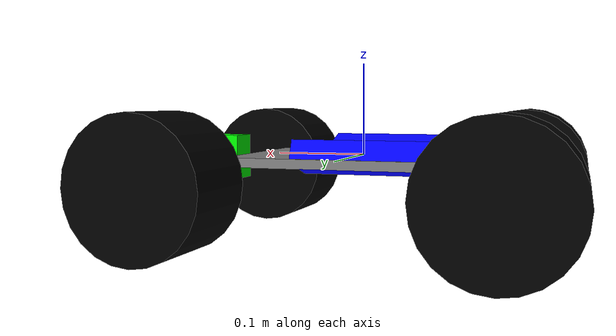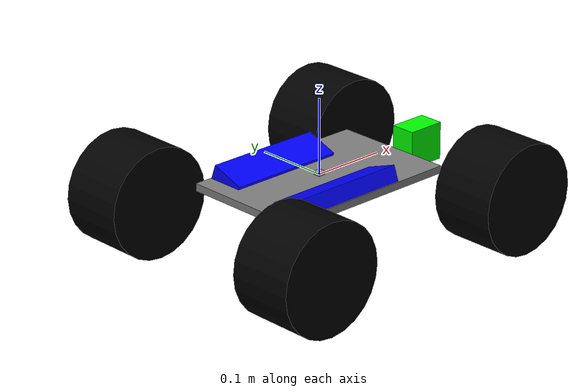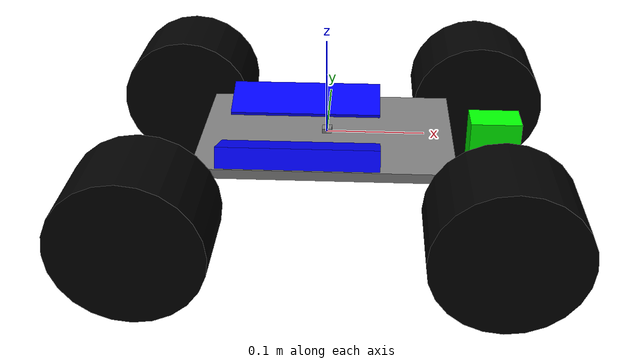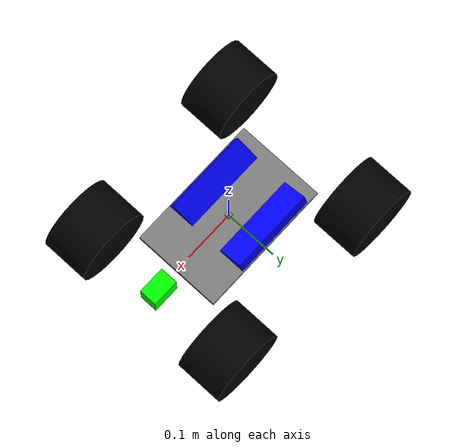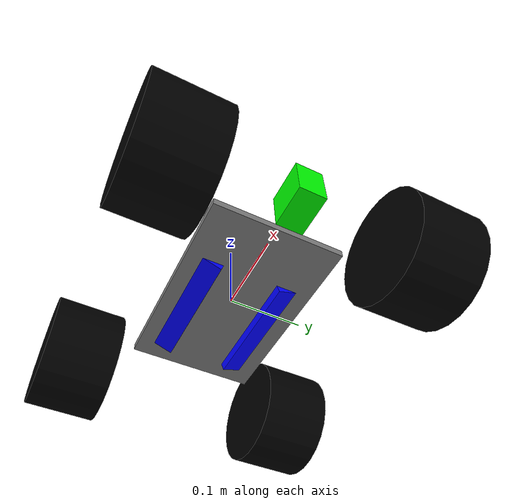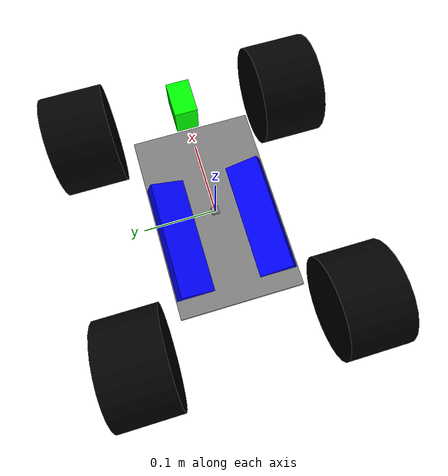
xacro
<?xml version="1.0"?>

<robot name="em_3905" xmlns:xacro="http://www.ros.org/wiki/xacro">
  <!-- Degree-to-radian conversions -->
  <xacro:property name="degrees_45" value="0.785398163"/>
  <xacro:property name="degrees_90" value="1.57079633"/>

  <!-- chassis_length is measured along the x axis, chassis_width
       along the y axis, and chassis_height along the z axis. -->
  <xacro:property name="chassis_length" value="0.258"/>
  <xacro:property name="chassis_width" value="0.168"/>
  <xacro:property name="chassis_height" value="0.01"/>
  <xacro:property name="chassis_mass" value="2.788"/>

  <xacro:property name="battery_x_offset" value="0.055"/>
  <xacro:property name="battery_dist" value="0.065"/>
  <xacro:property name="battery_comp_depth" value="0.02"/>
  <xacro:property name="battery_comp_angle" value="0.34906585"/>
  <xacro:property name="battery_length" value="0.16"/>
  <xacro:property name="battery_width" value="0.047"/>
  <xacro:property name="battery_height" value="0.024"/>
  <xacro:property name="battery_mass" value="0.5025"/>

  <xacro:property name="hub_dia" value="0.09652"/>
  <xacro:property name="tire_dia" value="0.14605"/>
  <xacro:property name="tire_width" value="0.0889"/>
  <xacro:property name="hex_hub_depth" value="0.01445"/>
  <xacro:property name="wheel_mass" value="0.29"/>

  <xacro:property name="wheelbase" value="0.335"/>
  <xacro:property name="hex_hub_dist" value="0.365"/>
  <xacro:property name="axle_length" value="0.03"/>
  <xacro:property name="wheel_travel" value="0.084"/>
  <xacro:property name="shock_z_offset" value="0.0655"/>

  <xacro:property name="shock_eff_limit" value="12.5106"/>
  <xacro:property name="shock_vel_limit" value="1000"/>

  <xacro:property name="axle_eff_limit" value="5.12766"/>
  <xacro:property name="axle_vel_limit" value="244.8696"/>

  <!-- These constants are used to simulate a Traxxas 2056 servo operated at
       6 V. servo_stall_torque is measured in N m. servo_no_load_speed is
       measured in rad/s. ori=0.5649 & 4.553 -->
  <xacro:property name="servo_stall_torque" value="0.5649"/>
  <xacro:property name="servo_no_load_speed" value="4.553"/>

  <material name="battery_mat">
    <color rgba="0 0 1 1"/>
  </material>
  <material name="chassis_mat">
    <color rgba="0.5 0.5 0.5 1"/>
  </material>
  <material name="tire_mat">
    <color rgba="0 0 0 1"/>
  </material>
  <material name="cam_mat">
    <color rgba="0 1 0 1"/>
  </material>

  <!-- Null inertial element. This is needed to make the model work with
       Gazebo. -->
  <xacro:macro name="null_inertial">
    <inertial>
      <mass value="0.001"/>
      <inertia ixx="0.001" ixy="0" ixz="0" iyy="0.001" iyz="0" izz="0.001"/>
    </inertial>
  </xacro:macro>

  <!-- Inertia of a solid cuboid. Width is measured along the x axis, depth
       along the y axis, and height along the z axis. -->
  <xacro:macro name="solid_cuboid_inertial"
               params="width depth height mass *origin">
    <inertial>
      <xacro:insert_block name="origin"/>
      <mass value="${mass}"/>
      <inertia ixx="${mass * (depth * depth + height * height) / 12}"
               ixy="0" ixz="0"
               iyy="${mass * (width * width + height * height) / 12}"
               iyz="0"
               izz="${mass * (width * width + depth * depth) / 12}"/>
    </inertial>
  </xacro:macro>

  <xacro:macro name="thick_walled_tube_inertial"
               params="inner_rad outer_rad height mass">
    <inertial>
      <mass value="${mass}"/>
      <inertia ixx="${(1 / 12) * mass * (3 * (inner_rad * inner_rad +
                    outer_rad * outer_rad) + height * height)}"
               ixy="0" ixz="0"
               iyy="${(1 / 12) * mass * (3 * (inner_rad * inner_rad +
                    outer_rad * outer_rad) + height * height)}"
               iyz="0"
               izz="${mass * (inner_rad * inner_rad +
                    outer_rad * outer_rad) / 2}"/>
    </inertial>
  </xacro:macro>

  <!-- Battery -->
  <xacro:macro name="battery" params="prefix reflect">
    <joint name="chassis_to_${prefix}_battery" type="fixed">
      <parent link="chassis"/>
      <child link="${prefix}_battery_offset"/>
      <origin xyz="${battery_x_offset - battery_length / 2}
                   ${reflect * battery_dist / 2}
                   0"
              rpy="${reflect * battery_comp_angle} 0 0"/>
    </joint>

    <link name="${prefix}_battery_offset">
      <xacro:null_inertial/>
    </link>

    <joint name="offset_to_${prefix}_battery" type="fixed">
      <parent link="${prefix}_battery_offset"/>
      <child link="${prefix}_battery"/>
      <origin xyz="0
                   ${reflect * battery_width / 2}
                   ${(battery_height / 2) - battery_comp_depth}"/>
    </joint>

    <link name="${prefix}_battery">
      <visual>
        <geometry>
          <box size="${battery_length} ${battery_width} ${battery_height}"/>
        </geometry>
        <material name="battery_mat"/>
      </visual>

      <collision>
        <geometry>
          <box size="${battery_length} ${battery_width} ${battery_height}"/>
        </geometry>
      </collision>

      <xacro:solid_cuboid_inertial
         width="${battery_length}" depth="${battery_width}"
         height="${battery_height}" mass="${battery_mass}">
        <origin/>
      </xacro:solid_cuboid_inertial>
    </link>

    <gazebo reference="${prefix}_battery">
      <material>Gazebo/Blue</material>
    </gazebo>
  </xacro:macro>

  <!-- Shock absorber -->
  <xacro:macro name="shock"
               params="lr_prefix fr_prefix lr_reflect fr_reflect child">
    <joint name="${lr_prefix}_${fr_prefix}_shock" type="prismatic">
      <parent link="chassis"/>
      <child link="${child}"/>

      <origin xyz="${fr_reflect * wheelbase / 2}
                   ${lr_reflect * ((hex_hub_dist / 2) - axle_length)}
                   ${(wheel_travel / 2) - shock_z_offset}"/>
      <axis xyz="0 0 -1"/>
      <limit lower="${-wheel_travel / 2}" upper="${wheel_travel / 2}"
             effort="${shock_eff_limit}" velocity="${shock_vel_limit}"/>
    </joint>
    <transmission name="${lr_prefix}_${fr_prefix}_shock_trans">
      <type>transmission_interface/SimpleTransmission</type>
      <joint name="${lr_prefix}_${fr_prefix}_shock">
        <hardwareInterface>hardware_interface/EffortJointInterface</hardwareInterface>
      </joint>
      <actuator name="${lr_prefix}_${fr_prefix}_shock_act">
        <!-- This hardwareInterface element exists for compatibility
             with ROS Hydro. -->
        <hardwareInterface>hardware_interface/EffortJointInterface</hardwareInterface>
        <mechanicalReduction>1</mechanicalReduction>
      </actuator>
    </transmission>
  </xacro:macro>

  <!-- The "wheel" macro defines an axle carrier, axle, and wheel. -->
  <xacro:macro name="wheel" params="lr_prefix fr_prefix lr_reflect">
    <link name="${lr_prefix}_${fr_prefix}_axle_carrier">
      <xacro:null_inertial/>
    </link>

    <!-- The left and right axles have the same axis so that identical
         rotation values cause the wheels to rotate in the same direction. -->
    <joint name="${lr_prefix}_${fr_prefix}_axle" type="continuous">
      <parent link="${lr_prefix}_${fr_prefix}_axle_carrier"/>
      <child link="${lr_prefix}_${fr_prefix}_wheel"/>
      <origin rpy="${degrees_90} 0 0"/>
      <axis xyz="0 0 -1"/>
      <limit effort="${axle_eff_limit}" velocity="${axle_vel_limit}"/>
    </joint>
    <transmission name="${lr_prefix}_${fr_prefix}_axle_trans">
      <type>transmission_interface/SimpleTransmission</type>
      <joint name="${lr_prefix}_${fr_prefix}_axle">
        <hardwareInterface>hardware_interface/EffortJointInterface</hardwareInterface>
      </joint>
      <actuator name="${lr_prefix}_${fr_prefix}_axle_act">
        <!-- This hardwareInterface element exists for compatibility
             with ROS Hydro. -->
        <hardwareInterface>hardware_interface/EffortJointInterface</hardwareInterface>
        <mechanicalReduction>1</mechanicalReduction>
      </actuator>
    </transmission>

    <link name="${lr_prefix}_${fr_prefix}_wheel">
      <visual>
        <origin xyz="0
                     ${lr_reflect * (axle_length - (tire_width /
                     2 - hex_hub_depth))}
                     0"/>
        <geometry>
          <cylinder radius="${tire_dia / 2}" length="${tire_width}"/>
        </geometry>
        <material name="tire_mat"/>
      </visual>

      <collision>
        <origin xyz="0
                     ${lr_reflect * (axle_length - (tire_width /
                     2 - hex_hub_depth))}
                     0"/>
        <geometry>
          <cylinder radius="${tire_dia / 2}" length="${tire_width}"/>
        </geometry>
      </collision>

      <xacro:thick_walled_tube_inertial
          inner_rad="${hub_dia / 2}" outer_rad="${tire_dia / 2}"
          height="${tire_width}" mass="${wheel_mass}"/>
    </link>

    <gazebo reference="${lr_prefix}_${fr_prefix}_wheel">
      <material>Gazebo/Black</material>
    </gazebo>
  </xacro:macro>

  <!-- Front wheel -->
  <xacro:macro name="front_wheel"
               params="lr_prefix fr_prefix lr_reflect fr_reflect">
    <xacro:shock lr_prefix="${lr_prefix}" fr_prefix="${fr_prefix}"
                 lr_reflect="${lr_reflect}" fr_reflect="${fr_reflect}"
                 child="${lr_prefix}_steering_link"/>

    <link name="${lr_prefix}_steering_link">
      <xacro:null_inertial/>
    </link>

    <joint name="${lr_prefix}_steering_joint" type="revolute">
      <parent link="${lr_prefix}_steering_link"/>
      <child link="${lr_prefix}_${fr_prefix}_axle_carrier"/>
      <axis xyz="0 0 1"/>
      <limit lower="${-degrees_45}" upper="${degrees_45}"
             effort="${servo_stall_torque}" velocity="${servo_no_load_speed}"/>
    </joint>
    <transmission name="${lr_prefix}_steering_trans">
      <type>transmission_interface/SimpleTransmission</type>
      <joint name="${lr_prefix}_steering_joint">
        <hardwareInterface>hardware_interface/EffortJointInterface</hardwareInterface>
      </joint>
      <actuator name="${lr_prefix}_steering_act">
        <!-- This hardwareInterface element exists for compatibility
             with ROS Hydro. -->
        <hardwareInterface>hardware_interface/EffortJointInterface</hardwareInterface>
        <mechanicalReduction>1</mechanicalReduction>
      </actuator>
    </transmission>

    <xacro:wheel lr_prefix="${lr_prefix}" fr_prefix="${fr_prefix}"
                 lr_reflect="${lr_reflect}"/>
  </xacro:macro>

  <!-- Rear wheel -->
  <xacro:macro name="rear_wheel"
               params="lr_prefix fr_prefix lr_reflect fr_reflect">
    <xacro:shock lr_prefix="${lr_prefix}" fr_prefix="${fr_prefix}"
                 lr_reflect="${lr_reflect}" fr_reflect="${fr_reflect}"
                 child="${lr_prefix}_${fr_prefix}_axle_carrier"/>
    <xacro:wheel lr_prefix="${lr_prefix}" fr_prefix="${fr_prefix}"
                 lr_reflect="${lr_reflect}"/>
  </xacro:macro>

  <!-- base_link must have geometry so that its axes can be displayed in
       rviz. -->
  <link name="base_link">
    <visual>
      <geometry>
        <box size="0.01 0.01 0.01"/>
      </geometry>
      <material name="chassis_mat"/>
    </visual>
  </link>
  <gazebo reference="base_link">
    <material>Gazebo/Grey</material>
  </gazebo>

  <!-- camera -->
  <link name="camera_depth_frame">
    <visual>
      <origin xyz="0 0 0"/>
      <geometry>
        <box size="${chassis_length / 5} ${chassis_width / 5} ${chassis_height*5}"/>
      </geometry>
      <material name="cam_mat"/>
    </visual>
    <collision>
      <origin xyz="${chassis_length / 1.5} 0 ${-chassis_height / 2}"/>
      <geometry>
        <box size="${chassis_length / 5} ${chassis_width / 5} ${chassis_height / 5}"/>
      </geometry>
    </collision>
  </link>

  <gazebo reference="camera_depth_frame">
    <material>Gazebo/Red</material>
  </gazebo>

  <joint name="chassis_link_to_cam" type="fixed">
    <parent link="chassis"/>
    <child link="camera_depth_frame"/>
    <origin xyz="${chassis_length / 1.5} 0 ${-chassis_height / 2}"/>
  </joint>

  <!-- camera frame -->
  <joint name="camera_optical_joint" type="fixed">
    <parent link="camera_depth_frame"/>
    <child link="camera_depth_optical_frame"/>
    <origin xyz="0.1516 0 0.012" rpy="${-pi/2} 0 ${-pi/2}"/>
  </joint>

  <link name="camera_depth_optical_frame">
    <origin xyz="0 0 0"/>
  </link>

  <!-- Chassis -->
  <link name="chassis">
    <visual>
      <origin xyz="0 0 ${-chassis_height / 2}"/>
      <geometry>
        <box size="${chassis_length} ${chassis_width} ${chassis_height}"/>
      </geometry>
      <material name="chassis_mat"/>
    </visual>

    <collision>
      <origin xyz="0 0 ${-chassis_height / 2}"/>
      <geometry>
        <box size="${chassis_length} ${chassis_width} ${chassis_height}"/>
      </geometry>
    </collision>

    <xacro:solid_cuboid_inertial
        width="${chassis_length}" depth="${chassis_width}"
        height="${chassis_height}" mass="${chassis_mass}">
      <origin xyz="0 0 ${-chassis_height / 2}"/>
    </xacro:solid_cuboid_inertial>
  </link>
  <gazebo reference="chassis">
    <material>Gazebo/Grey</material>
  </gazebo>

  <joint name="base_link_to_chassis" type="fixed">
    <parent link="base_link"/>
    <child link="chassis"/>
  </joint>

  <!-- Batteries -->
  <xacro:battery prefix="left" reflect="1"/>
  <xacro:battery prefix="right" reflect="-1"/>

  <!-- Wheels -->
  <xacro:front_wheel lr_prefix="left" fr_prefix="front"
                     lr_reflect="1" fr_reflect="1"/>
  <xacro:front_wheel lr_prefix="right" fr_prefix="front"
                     lr_reflect="-1" fr_reflect="1"/>
  <xacro:rear_wheel lr_prefix="left" fr_prefix="rear"
                    lr_reflect="1" fr_reflect="-1"/>
  <xacro:rear_wheel lr_prefix="right" fr_prefix="rear"
                    lr_reflect="-1" fr_reflect="-1"/>

  <gazebo>
    <plugin name="gazebo_ros_control" filename="libgazebo_ros_control.so"/>
  </gazebo>

  <gazebo reference="camera_depth_frame">
      <sensor type="depth" name="camera">
        <always_on>true</always_on>
        <update_rate>20.0</update_rate>
        <camera>
          <horizontal_fov>1.089</horizontal_fov>
          <image>
            <format>B8G8R8</format>
            <width>640</width>
            <height>480</height>
          </image>
          <clip>
            <near>0.0001</near>
            <far>13.0</far>
          </clip>
        </camera>
        <plugin name="kinect_camera_controller" filename="/home/timtu/catkin_ws/src/ackermann_vehicle/ackermann_vehicle_gazebo/plugin/libgazebo_ros_openni_kinect.so">
          <cameraName>camera</cameraName>
          <alwaysOn>true</alwaysOn>
          <updateRate>10</updateRate>
          <imageTopicName>rgb/image_raw</imageTopicName>
          <depthImageTopicName>depth/image_raw</depthImageTopicName>
          <pointCloudTopicName>depth/points</pointCloudTopicName>
          <cameraInfoTopicName>rgb/camera_info</cameraInfoTopicName>
          <depthImageCameraInfoTopicName>depth/camera_info</depthImageCameraInfoTopicName>
          <frameName>camera_depth_optical_frame</frameName>
          <baseline>0.1</baseline>
          <distortion_k1>0.0</distortion_k1>
          <distortion_k2>0.0</distortion_k2>
          <distortion_k3>0.0</distortion_k3>
          <distortion_t1>0.0</distortion_t1>
          <distortion_t2>0.0</distortion_t2>
          <pointCloudCutoff>0.4</pointCloudCutoff>
        </plugin>
      </sensor>
  </gazebo>
  <gazebo>
    <plugin name="joint_state_publisher" filename="libgazebo_ros_joint_state_publisher.so">
      <update_rate>20</update_rate>
      <jointName>left_front_shock</jointName>
      <jointName>left_rear_shock</jointName>
      <jointName>right_front_shock</jointName>
      <jointName>right_rear_shock</jointName>
      <jointName>left_front_axle</jointName>
      <jointName>left_rear_axle</jointName>
      <jointName>right_front_axle</jointName>
      <jointName>right_rear_axle</jointName>
      <jointName>left_steering_joint</jointName>
      <jointName>right_steering_joint</jointName>
    </plugin>
  </gazebo>

  <gazebo>
    <plugin name="imu_plugin" filename="libgazebo_ros_imu.so">
      <alwaysOn>true</alwaysOn>
      <bodyName>base_link</bodyName>
      <topicName>imu</topicName>
      <serviceName>imu_service</serviceName>
      <gaussianNoise>0.0</gaussianNoise>
      <updateRate>20.0</updateRate>
    </plugin>
  </gazebo>

</robot>
